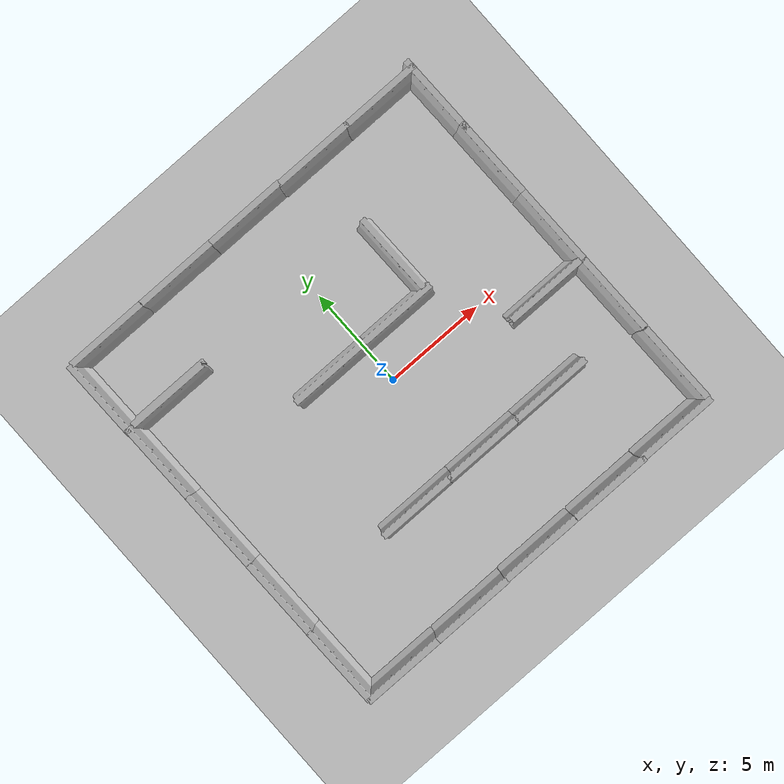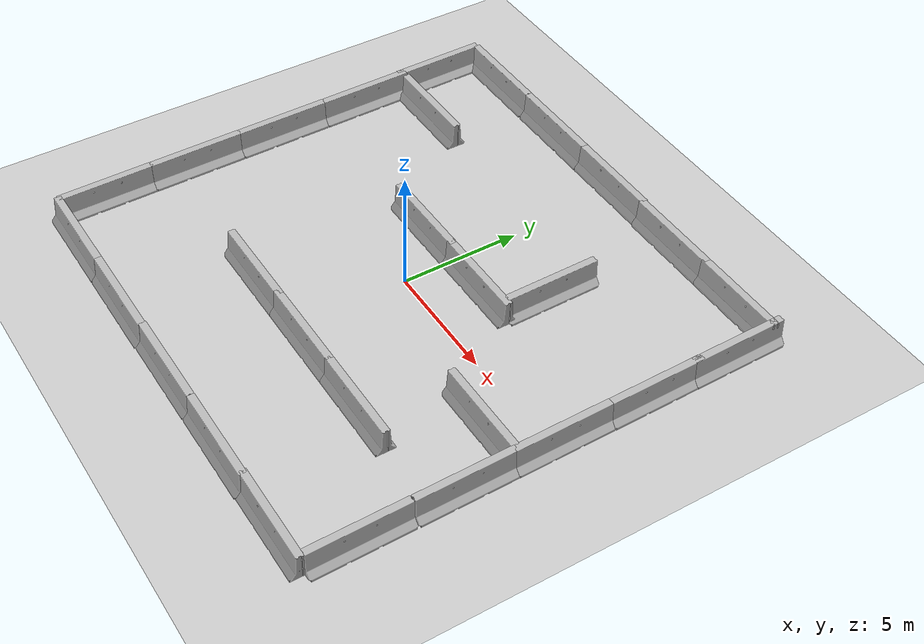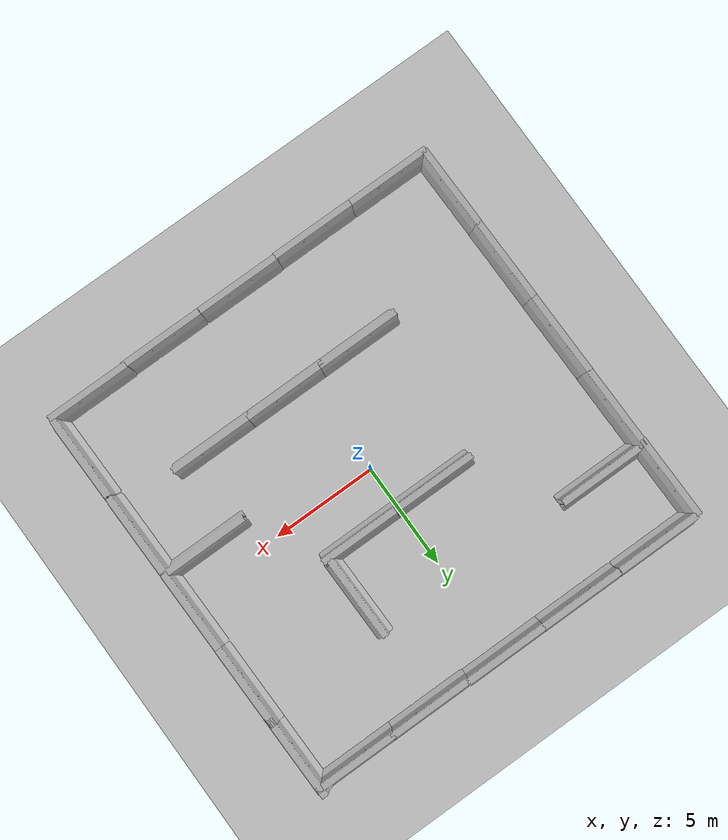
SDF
<sdf version="1.6">
 <world name="default">
  <light name="sun" type="directional">
   <pose>0 0 10 0 -0 0</pose>
   <diffuse>0.8 0.8 0.8 1</diffuse>
   <specular>0.1 0.1 0.1 1</specular>
   <attenuation>
    <range>1000</range>
    <constant>0.9</constant>
    <linear>0.01</linear>
    <quadratic>0.001</quadratic>
   </attenuation>
   <direction>-0.5 0.5 -1</direction>
  </light>
  <model name="ground_plane">
   <static>1</static>
   <link name="link">
    <collision name="collision">
     <geometry><plane><normal>0 0 1</normal><size>100 100</size></plane></geometry>
     <surface><friction><ode><mu>100</mu><mu2>50</mu2></ode></friction></surface>
    </collision>
    <visual name="visual">
     <cast_shadows>0</cast_shadows>
     <geometry><plane><normal>0 0 1</normal><size>100 100</size></plane></geometry>
     <material>
      <script><uri>file://media/materials/scripts/gazebo.material</uri><name>Gazebo/Grey</name></script>
     </material>
    </visual>
   </link>
  </model>
  <gravity>0 0 -9.8</gravity>
  <magnetic_field>6e-06 2.3e-05 -4.2e-05</magnetic_field>
  <atmosphere type="adiabatic"/>
  <physics name="default_physics" default="0" type="ode">
   <max_step_size>0.001</max_step_size>
   <real_time_factor>1</real_time_factor>
   <real_time_update_rate>1000</real_time_update_rate>
  </physics>
  <scene><ambient>0.4 0.4 0.4 1</ambient><background>0.7 0.7 0.7 1</background><shadows>1</shadows></scene>
  <spherical_coordinates>
   <surface_model>EARTH_WGS84</surface_model>
   <latitude_deg>0</latitude_deg>
   <longitude_deg>0</longitude_deg>
   <elevation>0</elevation>
   <heading_deg>0</heading_deg>
  </spherical_coordinates>
  <model name="jersey_barrier_0">
   <static>1</static>
   <link name="link">
    <visual name="visual">
     <geometry>
      <mesh><uri>model://jersey_barrier/meshes/jersey_barrier.dae</uri><scale>1 1 1</scale></mesh>
     </geometry>
    </visual>
    <collision name="upright">
     <pose>0 0 0.5715 0 -0 0</pose>
     <geometry><box><size>4.06542 0.3063 1.143</size></box></geometry>
    </collision>
    <collision name="base">
     <pose>0 0 0.032258 0 -0 0</pose>
     <geometry><box><size>4.06542 0.8107 0.064516</size></box></geometry>
    </collision>
    <collision name="base2">
     <pose>0 0 0.1 0 -0 0</pose>
     <geometry><box><size>4.06542 0.65 0.1</size></box></geometry>
    </collision>
    <collision name="base3">
     <pose>0 0 0.2 0 -0 0</pose>
     <geometry><box><size>4.06542 0.5 0.1</size></box></geometry>
    </collision>
    <collision name="left-angle">
     <pose>0 -0.224 0.2401 0.9 -0 0</pose>
     <geometry><box><size>4.06542 0.5 0.064516</size></box></geometry>
    </collision>
    <collision name="right-angle">
     <pose>0 0.224 0.2401 -0.9 0 0</pose>
     <geometry><box><size>4.06542 0.5 0.064516</size></box></geometry>
    </collision>
   </link>
   <pose>-8.00803 -9.80789 0 0 -0 0</pose>
  </model>
  <model name="jersey_barrier_1">
   <static>1</static>
   <link name="link">
    <visual name="visual">
     <geometry>
      <mesh><uri>model://jersey_barrier/meshes/jersey_barrier.dae</uri><scale>1 1 1</scale></mesh>
     </geometry>
    </visual>
    <collision name="upright">
     <pose>0 0 0.5715 0 -0 0</pose>
     <geometry><box><size>4.06542 0.3063 1.143</size></box></geometry>
    </collision>
    <collision name="base">
     <pose>0 0 0.032258 0 -0 0</pose>
     <geometry><box><size>4.06542 0.8107 0.064516</size></box></geometry>
    </collision>
    <collision name="base2">
     <pose>0 0 0.1 0 -0 0</pose>
     <geometry><box><size>4.06542 0.65 0.1</size></box></geometry>
    </collision>
    <collision name="base3">
     <pose>0 0 0.2 0 -0 0</pose>
     <geometry><box><size>4.06542 0.5 0.1</size></box></geometry>
    </collision>
    <collision name="left-angle">
     <pose>0 -0.224 0.2401 0.9 -0 0</pose>
     <geometry><box><size>4.06542 0.5 0.064516</size></box></geometry>
    </collision>
    <collision name="right-angle">
     <pose>0 0.224 0.2401 -0.9 0 0</pose>
     <geometry><box><size>4.06542 0.5 0.064516</size></box></geometry>
    </collision>
   </link>
   <pose>-4.00181 -9.80833 0 0 -0 0</pose>
  </model>
  <model name="jersey_barrier_0_clone">
   <static>1</static>
   <link name="link">
    <visual name="visual">
     <geometry>
      <mesh><uri>model://jersey_barrier/meshes/jersey_barrier.dae</uri><scale>1 1 1</scale></mesh>
     </geometry>
    </visual>
    <collision name="upright">
     <pose>0 0 0.5715 0 -0 0</pose>
     <geometry><box><size>4.06542 0.3063 1.143</size></box></geometry>
    </collision>
    <collision name="base">
     <pose>0 0 0.032258 0 -0 0</pose>
     <geometry><box><size>4.06542 0.8107 0.064516</size></box></geometry>
    </collision>
    <collision name="base2">
     <pose>0 0 0.1 0 -0 0</pose>
     <geometry><box><size>4.06542 0.65 0.1</size></box></geometry>
    </collision>
    <collision name="base3">
     <pose>0 0 0.2 0 -0 0</pose>
     <geometry><box><size>4.06542 0.5 0.1</size></box></geometry>
    </collision>
    <collision name="left-angle">
     <pose>0 -0.224 0.2401 0.9 -0 0</pose>
     <geometry><box><size>4.06542 0.5 0.064516</size></box></geometry>
    </collision>
    <collision name="right-angle">
     <pose>0 0.224 0.2401 -0.9 0 0</pose>
     <geometry><box><size>4.06542 0.5 0.064516</size></box></geometry>
    </collision>
   </link>
   <pose>-0.02046 -9.7729 0 0 -0 0</pose>
  </model>
  <model name="jersey_barrier_0_clone_0">
   <static>1</static>
   <link name="link">
    <visual name="visual">
     <geometry>
      <mesh><uri>model://jersey_barrier/meshes/jersey_barrier.dae</uri><scale>1 1 1</scale></mesh>
     </geometry>
    </visual>
    <collision name="upright">
     <pose>0 0 0.5715 0 -0 0</pose>
     <geometry><box><size>4.06542 0.3063 1.143</size></box></geometry>
    </collision>
    <collision name="base">
     <pose>0 0 0.032258 0 -0 0</pose>
     <geometry><box><size>4.06542 0.8107 0.064516</size></box></geometry>
    </collision>
    <collision name="base2">
     <pose>0 0 0.1 0 -0 0</pose>
     <geometry><box><size>4.06542 0.65 0.1</size></box></geometry>
    </collision>
    <collision name="base3">
     <pose>0 0 0.2 0 -0 0</pose>
     <geometry><box><size>4.06542 0.5 0.1</size></box></geometry>
    </collision>
    <collision name="left-angle">
     <pose>0 -0.224 0.2401 0.9 -0 0</pose>
     <geometry><box><size>4.06542 0.5 0.064516</size></box></geometry>
    </collision>
    <collision name="right-angle">
     <pose>0 0.224 0.2401 -0.9 0 0</pose>
     <geometry><box><size>4.06542 0.5 0.064516</size></box></geometry>
    </collision>
   </link>
   <pose>4.0183 -9.76947 0 0 -0 0</pose>
  </model>
  <model name="jersey_barrier_0_clone_1">
   <static>1</static>
   <link name="link">
    <visual name="visual">
     <geometry>
      <mesh><uri>model://jersey_barrier/meshes/jersey_barrier.dae</uri><scale>1 1 1</scale></mesh>
     </geometry>
    </visual>
    <collision name="upright">
     <pose>0 0 0.5715 0 -0 0</pose>
     <geometry><box><size>4.06542 0.3063 1.143</size></box></geometry>
    </collision>
    <collision name="base">
     <pose>0 0 0.032258 0 -0 0</pose>
     <geometry><box><size>4.06542 0.8107 0.064516</size></box></geometry>
    </collision>
    <collision name="base2">
     <pose>0 0 0.1 0 -0 0</pose>
     <geometry><box><size>4.06542 0.65 0.1</size></box></geometry>
    </collision>
    <collision name="base3">
     <pose>0 0 0.2 0 -0 0</pose>
     <geometry><box><size>4.06542 0.5 0.1</size></box></geometry>
    </collision>
    <collision name="left-angle">
     <pose>0 -0.224 0.2401 0.9 -0 0</pose>
     <geometry><box><size>4.06542 0.5 0.064516</size></box></geometry>
    </collision>
    <collision name="right-angle">
     <pose>0 0.224 0.2401 -0.9 0 0</pose>
     <geometry><box><size>4.06542 0.5 0.064516</size></box></geometry>
    </collision>
   </link>
   <pose>7.86671 -9.73049 0 0 -0 0</pose>
  </model>
  <model name="jersey_barrier_0_clone_2">
   <static>1</static>
   <link name="link">
    <visual name="visual">
     <geometry>
      <mesh><uri>model://jersey_barrier/meshes/jersey_barrier.dae</uri><scale>1 1 1</scale></mesh>
     </geometry>
    </visual>
    <collision name="upright">
     <pose>0 0 0.5715 0 -0 0</pose>
     <geometry><box><size>4.06542 0.3063 1.143</size></box></geometry>
    </collision>
    <collision name="base">
     <pose>0 0 0.032258 0 -0 0</pose>
     <geometry><box><size>4.06542 0.8107 0.064516</size></box></geometry>
    </collision>
    <collision name="base2">
     <pose>0 0 0.1 0 -0 0</pose>
     <geometry><box><size>4.06542 0.65 0.1</size></box></geometry>
    </collision>
    <collision name="base3">
     <pose>0 0 0.2 0 -0 0</pose>
     <geometry><box><size>4.06542 0.5 0.1</size></box></geometry>
    </collision>
    <collision name="left-angle">
     <pose>0 -0.224 0.2401 0.9 -0 0</pose>
     <geometry><box><size>4.06542 0.5 0.064516</size></box></geometry>
    </collision>
    <collision name="right-angle">
     <pose>0 0.224 0.2401 -0.9 0 0</pose>
     <geometry><box><size>4.06542 0.5 0.064516</size></box></geometry>
    </collision>
   </link>
   <pose>9.75338 -7.57624 0 0 0 -1.55932</pose>
  </model>
  <model name="jersey_barrier_0_clone_3">
   <static>1</static>
   <link name="link">
    <visual name="visual">
     <geometry>
      <mesh><uri>model://jersey_barrier/meshes/jersey_barrier.dae</uri><scale>1 1 1</scale></mesh>
     </geometry>
    </visual>
    <collision name="upright">
     <pose>0 0 0.5715 0 -0 0</pose>
     <geometry><box><size>4.06542 0.3063 1.143</size></box></geometry>
    </collision>
    <collision name="base">
     <pose>0 0 0.032258 0 -0 0</pose>
     <geometry><box><size>4.06542 0.8107 0.064516</size></box></geometry>
    </collision>
    <collision name="base2">
     <pose>0 0 0.1 0 -0 0</pose>
     <geometry><box><size>4.06542 0.65 0.1</size></box></geometry>
    </collision>
    <collision name="base3">
     <pose>0 0 0.2 0 -0 0</pose>
     <geometry><box><size>4.06542 0.5 0.1</size></box></geometry>
    </collision>
    <collision name="left-angle">
     <pose>0 -0.224 0.2401 0.9 -0 0</pose>
     <geometry><box><size>4.06542 0.5 0.064516</size></box></geometry>
    </collision>
    <collision name="right-angle">
     <pose>0 0.224 0.2401 -0.9 0 0</pose>
     <geometry><box><size>4.06542 0.5 0.064516</size></box></geometry>
    </collision>
   </link>
   <pose>-8.06687 9.72122 0 0 -0 0</pose>
  </model>
  <model name="jersey_barrier_0_clone_4">
   <static>1</static>
   <link name="link">
    <visual name="visual">
     <geometry>
      <mesh><uri>model://jersey_barrier/meshes/jersey_barrier.dae</uri><scale>1 1 1</scale></mesh>
     </geometry>
    </visual>
    <collision name="upright">
     <pose>0 0 0.5715 0 -0 0</pose>
     <geometry><box><size>4.06542 0.3063 1.143</size></box></geometry>
    </collision>
    <collision name="base">
     <pose>0 0 0.032258 0 -0 0</pose>
     <geometry><box><size>4.06542 0.8107 0.064516</size></box></geometry>
    </collision>
    <collision name="base2">
     <pose>0 0 0.1 0 -0 0</pose>
     <geometry><box><size>4.06542 0.65 0.1</size></box></geometry>
    </collision>
    <collision name="base3">
     <pose>0 0 0.2 0 -0 0</pose>
     <geometry><box><size>4.06542 0.5 0.1</size></box></geometry>
    </collision>
    <collision name="left-angle">
     <pose>0 -0.224 0.2401 0.9 -0 0</pose>
     <geometry><box><size>4.06542 0.5 0.064516</size></box></geometry>
    </collision>
    <collision name="right-angle">
     <pose>0 0.224 0.2401 -0.9 0 0</pose>
     <geometry><box><size>4.06542 0.5 0.064516</size></box></geometry>
    </collision>
   </link>
   <pose>-4.0208 9.71782 0 0 -0 0</pose>
  </model>
  <model name="jersey_barrier_0_clone_5">
   <static>1</static>
   <link name="link">
    <visual name="visual">
     <geometry>
      <mesh><uri>model://jersey_barrier/meshes/jersey_barrier.dae</uri><scale>1 1 1</scale></mesh>
     </geometry>
    </visual>
    <collision name="upright">
     <pose>0 0 0.5715 0 -0 0</pose>
     <geometry><box><size>4.06542 0.3063 1.143</size></box></geometry>
    </collision>
    <collision name="base">
     <pose>0 0 0.032258 0 -0 0</pose>
     <geometry><box><size>4.06542 0.8107 0.064516</size></box></geometry>
    </collision>
    <collision name="base2">
     <pose>0 0 0.1 0 -0 0</pose>
     <geometry><box><size>4.06542 0.65 0.1</size></box></geometry>
    </collision>
    <collision name="base3">
     <pose>0 0 0.2 0 -0 0</pose>
     <geometry><box><size>4.06542 0.5 0.1</size></box></geometry>
    </collision>
    <collision name="left-angle">
     <pose>0 -0.224 0.2401 0.9 -0 0</pose>
     <geometry><box><size>4.06542 0.5 0.064516</size></box></geometry>
    </collision>
    <collision name="right-angle">
     <pose>0 0.224 0.2401 -0.9 0 0</pose>
     <geometry><box><size>4.06542 0.5 0.064516</size></box></geometry>
    </collision>
   </link>
   <pose>-0.053333 9.71451 0 0 -0 0</pose>
  </model>
  <model name="jersey_barrier_0_clone_6">
   <static>1</static>
   <link name="link">
    <visual name="visual">
     <geometry>
      <mesh><uri>model://jersey_barrier/meshes/jersey_barrier.dae</uri><scale>1 1 1</scale></mesh>
     </geometry>
    </visual>
    <collision name="upright">
     <pose>0 0 0.5715 0 -0 0</pose>
     <geometry><box><size>4.06542 0.3063 1.143</size></box></geometry>
    </collision>
    <collision name="base">
     <pose>0 0 0.032258 0 -0 0</pose>
     <geometry><box><size>4.06542 0.8107 0.064516</size></box></geometry>
    </collision>
    <collision name="base2">
     <pose>0 0 0.1 0 -0 0</pose>
     <geometry><box><size>4.06542 0.65 0.1</size></box></geometry>
    </collision>
    <collision name="base3">
     <pose>0 0 0.2 0 -0 0</pose>
     <geometry><box><size>4.06542 0.5 0.1</size></box></geometry>
    </collision>
    <collision name="left-angle">
     <pose>0 -0.224 0.2401 0.9 -0 0</pose>
     <geometry><box><size>4.06542 0.5 0.064516</size></box></geometry>
    </collision>
    <collision name="right-angle">
     <pose>0 0.224 0.2401 -0.9 0 0</pose>
     <geometry><box><size>4.06542 0.5 0.064516</size></box></geometry>
    </collision>
   </link>
   <pose>3.87428 9.67304 0 0 -0 0</pose>
  </model>
  <model name="jersey_barrier_0_clone_7">
   <static>1</static>
   <link name="link">
    <visual name="visual">
     <geometry>
      <mesh><uri>model://jersey_barrier/meshes/jersey_barrier.dae</uri><scale>1 1 1</scale></mesh>
     </geometry>
    </visual>
    <collision name="upright">
     <pose>0 0 0.5715 0 -0 0</pose>
     <geometry><box><size>4.06542 0.3063 1.143</size></box></geometry>
    </collision>
    <collision name="base">
     <pose>0 0 0.032258 0 -0 0</pose>
     <geometry><box><size>4.06542 0.8107 0.064516</size></box></geometry>
    </collision>
    <collision name="base2">
     <pose>0 0 0.1 0 -0 0</pose>
     <geometry><box><size>4.06542 0.65 0.1</size></box></geometry>
    </collision>
    <collision name="base3">
     <pose>0 0 0.2 0 -0 0</pose>
     <geometry><box><size>4.06542 0.5 0.1</size></box></geometry>
    </collision>
    <collision name="left-angle">
     <pose>0 -0.224 0.2401 0.9 -0 0</pose>
     <geometry><box><size>4.06542 0.5 0.064516</size></box></geometry>
    </collision>
    <collision name="right-angle">
     <pose>0 0.224 0.2401 -0.9 0 0</pose>
     <geometry><box><size>4.06542 0.5 0.064516</size></box></geometry>
    </collision>
   </link>
   <pose>7.72339 9.66981 0 0 -0 0</pose>
  </model>
  <model name="jersey_barrier_0_clone_2_clone">
   <static>1</static>
   <link name="link">
    <visual name="visual">
     <geometry>
      <mesh><uri>model://jersey_barrier/meshes/jersey_barrier.dae</uri><scale>1 1 1</scale></mesh>
     </geometry>
    </visual>
    <collision name="upright">
     <pose>0 0 0.5715 0 -0 0</pose>
     <geometry><box><size>4.06542 0.3063 1.143</size></box></geometry>
    </collision>
    <collision name="base">
     <pose>0 0 0.032258 0 -0 0</pose>
     <geometry><box><size>4.06542 0.8107 0.064516</size></box></geometry>
    </collision>
    <collision name="base2">
     <pose>0 0 0.1 0 -0 0</pose>
     <geometry><box><size>4.06542 0.65 0.1</size></box></geometry>
    </collision>
    <collision name="base3">
     <pose>0 0 0.2 0 -0 0</pose>
     <geometry><box><size>4.06542 0.5 0.1</size></box></geometry>
    </collision>
    <collision name="left-angle">
     <pose>0 -0.224 0.2401 0.9 -0 0</pose>
     <geometry><box><size>4.06542 0.5 0.064516</size></box></geometry>
    </collision>
    <collision name="right-angle">
     <pose>0 0.224 0.2401 -0.9 0 0</pose>
     <geometry><box><size>4.06542 0.5 0.064516</size></box></geometry>
    </collision>
   </link>
   <pose>9.71721 -3.4961 0 0 0 -1.55932</pose>
  </model>
  <model name="jersey_barrier_0_clone_2_clone_0">
   <static>1</static>
   <link name="link">
    <visual name="visual">
     <geometry>
      <mesh><uri>model://jersey_barrier/meshes/jersey_barrier.dae</uri><scale>1 1 1</scale></mesh>
     </geometry>
    </visual>
    <collision name="upright">
     <pose>0 0 0.5715 0 -0 0</pose>
     <geometry><box><size>4.06542 0.3063 1.143</size></box></geometry>
    </collision>
    <collision name="base">
     <pose>0 0 0.032258 0 -0 0</pose>
     <geometry><box><size>4.06542 0.8107 0.064516</size></box></geometry>
    </collision>
    <collision name="base2">
     <pose>0 0 0.1 0 -0 0</pose>
     <geometry><box><size>4.06542 0.65 0.1</size></box></geometry>
    </collision>
    <collision name="base3">
     <pose>0 0 0.2 0 -0 0</pose>
     <geometry><box><size>4.06542 0.5 0.1</size></box></geometry>
    </collision>
    <collision name="left-angle">
     <pose>0 -0.224 0.2401 0.9 -0 0</pose>
     <geometry><box><size>4.06542 0.5 0.064516</size></box></geometry>
    </collision>
    <collision name="right-angle">
     <pose>0 0.224 0.2401 -0.9 0 0</pose>
     <geometry><box><size>4.06542 0.5 0.064516</size></box></geometry>
    </collision>
   </link>
   <pose>9.68061 0.429867 0 0 0 -1.55932</pose>
  </model>
  <model name="jersey_barrier_0_clone_2_clone_1">
   <static>1</static>
   <link name="link">
    <visual name="visual">
     <geometry>
      <mesh><uri>model://jersey_barrier/meshes/jersey_barrier.dae</uri><scale>1 1 1</scale></mesh>
     </geometry>
    </visual>
    <collision name="upright">
     <pose>0 0 0.5715 0 -0 0</pose>
     <geometry><box><size>4.06542 0.3063 1.143</size></box></geometry>
    </collision>
    <collision name="base">
     <pose>0 0 0.032258 0 -0 0</pose>
     <geometry><box><size>4.06542 0.8107 0.064516</size></box></geometry>
    </collision>
    <collision name="base2">
     <pose>0 0 0.1 0 -0 0</pose>
     <geometry><box><size>4.06542 0.65 0.1</size></box></geometry>
    </collision>
    <collision name="base3">
     <pose>0 0 0.2 0 -0 0</pose>
     <geometry><box><size>4.06542 0.5 0.1</size></box></geometry>
    </collision>
    <collision name="left-angle">
     <pose>0 -0.224 0.2401 0.9 -0 0</pose>
     <geometry><box><size>4.06542 0.5 0.064516</size></box></geometry>
    </collision>
    <collision name="right-angle">
     <pose>0 0.224 0.2401 -0.9 0 0</pose>
     <geometry><box><size>4.06542 0.5 0.064516</size></box></geometry>
    </collision>
   </link>
   <pose>9.64472 4.43307 0 0 0 -1.55932</pose>
  </model>
  <model name="jersey_barrier_0_clone_2_clone_2">
   <static>1</static>
   <link name="link">
    <visual name="visual">
     <geometry>
      <mesh><uri>model://jersey_barrier/meshes/jersey_barrier.dae</uri><scale>1 1 1</scale></mesh>
     </geometry>
    </visual>
    <collision name="upright">
     <pose>0 0 0.5715 0 -0 0</pose>
     <geometry><box><size>4.06542 0.3063 1.143</size></box></geometry>
    </collision>
    <collision name="base">
     <pose>0 0 0.032258 0 -0 0</pose>
     <geometry><box><size>4.06542 0.8107 0.064516</size></box></geometry>
    </collision>
    <collision name="base2">
     <pose>0 0 0.1 0 -0 0</pose>
     <geometry><box><size>4.06542 0.65 0.1</size></box></geometry>
    </collision>
    <collision name="base3">
     <pose>0 0 0.2 0 -0 0</pose>
     <geometry><box><size>4.06542 0.5 0.1</size></box></geometry>
    </collision>
    <collision name="left-angle">
     <pose>0 -0.224 0.2401 0.9 -0 0</pose>
     <geometry><box><size>4.06542 0.5 0.064516</size></box></geometry>
    </collision>
    <collision name="right-angle">
     <pose>0 0.224 0.2401 -0.9 0 0</pose>
     <geometry><box><size>4.06542 0.5 0.064516</size></box></geometry>
    </collision>
   </link>
   <pose>9.60766 8.05125 0 0 0 -1.55932</pose>
  </model>
  <model name="jersey_barrier_0_clone_2_clone_2_clone">
   <static>1</static>
   <link name="link">
    <visual name="visual">
     <geometry>
      <mesh><uri>model://jersey_barrier/meshes/jersey_barrier.dae</uri><scale>1 1 1</scale></mesh>
     </geometry>
    </visual>
    <collision name="upright">
     <pose>0 0 0.5715 0 -0 0</pose>
     <geometry><box><size>4.06542 0.3063 1.143</size></box></geometry>
    </collision>
    <collision name="base">
     <pose>0 0 0.032258 0 -0 0</pose>
     <geometry><box><size>4.06542 0.8107 0.064516</size></box></geometry>
    </collision>
    <collision name="base2">
     <pose>0 0 0.1 0 -0 0</pose>
     <geometry><box><size>4.06542 0.65 0.1</size></box></geometry>
    </collision>
    <collision name="base3">
     <pose>0 0 0.2 0 -0 0</pose>
     <geometry><box><size>4.06542 0.5 0.1</size></box></geometry>
    </collision>
    <collision name="left-angle">
     <pose>0 -0.224 0.2401 0.9 -0 0</pose>
     <geometry><box><size>4.06542 0.5 0.064516</size></box></geometry>
    </collision>
    <collision name="right-angle">
     <pose>0 0.224 0.2401 -0.9 0 0</pose>
     <geometry><box><size>4.06542 0.5 0.064516</size></box></geometry>
    </collision>
   </link>
   <pose>-9.96184 -7.80551 0 0 0 -1.55932</pose>
  </model>
  <model name="jersey_barrier_0_clone_2_clone_2_clone_0">
   <static>1</static>
   <link name="link">
    <visual name="visual">
     <geometry>
      <mesh><uri>model://jersey_barrier/meshes/jersey_barrier.dae</uri><scale>1 1 1</scale></mesh>
     </geometry>
    </visual>
    <collision name="upright">
     <pose>0 0 0.5715 0 -0 0</pose>
     <geometry><box><size>4.06542 0.3063 1.143</size></box></geometry>
    </collision>
    <collision name="base">
     <pose>0 0 0.032258 0 -0 0</pose>
     <geometry><box><size>4.06542 0.8107 0.064516</size></box></geometry>
    </collision>
    <collision name="base2">
     <pose>0 0 0.1 0 -0 0</pose>
     <geometry><box><size>4.06542 0.65 0.1</size></box></geometry>
    </collision>
    <collision name="base3">
     <pose>0 0 0.2 0 -0 0</pose>
     <geometry><box><size>4.06542 0.5 0.1</size></box></geometry>
    </collision>
    <collision name="left-angle">
     <pose>0 -0.224 0.2401 0.9 -0 0</pose>
     <geometry><box><size>4.06542 0.5 0.064516</size></box></geometry>
    </collision>
    <collision name="right-angle">
     <pose>0 0.224 0.2401 -0.9 0 0</pose>
     <geometry><box><size>4.06542 0.5 0.064516</size></box></geometry>
    </collision>
   </link>
   <pose>-9.99889 -3.87663 0 0 0 -1.55932</pose>
  </model>
  <model name="jersey_barrier_0_clone_2_clone_2_clone_1">
   <static>1</static>
   <link name="link">
    <visual name="visual">
     <geometry>
      <mesh><uri>model://jersey_barrier/meshes/jersey_barrier.dae</uri><scale>1 1 1</scale></mesh>
     </geometry>
    </visual>
    <collision name="upright">
     <pose>0 0 0.5715 0 -0 0</pose>
     <geometry><box><size>4.06542 0.3063 1.143</size></box></geometry>
    </collision>
    <collision name="base">
     <pose>0 0 0.032258 0 -0 0</pose>
     <geometry><box><size>4.06542 0.8107 0.064516</size></box></geometry>
    </collision>
    <collision name="base2">
     <pose>0 0 0.1 0 -0 0</pose>
     <geometry><box><size>4.06542 0.65 0.1</size></box></geometry>
    </collision>
    <collision name="base3">
     <pose>0 0 0.2 0 -0 0</pose>
     <geometry><box><size>4.06542 0.5 0.1</size></box></geometry>
    </collision>
    <collision name="left-angle">
     <pose>0 -0.224 0.2401 0.9 -0 0</pose>
     <geometry><box><size>4.06542 0.5 0.064516</size></box></geometry>
    </collision>
    <collision name="right-angle">
     <pose>0 0.224 0.2401 -0.9 0 0</pose>
     <geometry><box><size>4.06542 0.5 0.064516</size></box></geometry>
    </collision>
   </link>
   <pose>-10.0363 0.090914 0 0 0 -1.55932</pose>
  </model>
  <model name="jersey_barrier_0_clone_2_clone_2_clone_2">
   <static>1</static>
   <link name="link">
    <visual name="visual">
     <geometry>
      <mesh><uri>model://jersey_barrier/meshes/jersey_barrier.dae</uri><scale>1 1 1</scale></mesh>
     </geometry>
    </visual>
    <collision name="upright">
     <pose>0 0 0.5715 0 -0 0</pose>
     <geometry><box><size>4.06542 0.3063 1.143</size></box></geometry>
    </collision>
    <collision name="base">
     <pose>0 0 0.032258 0 -0 0</pose>
     <geometry><box><size>4.06542 0.8107 0.064516</size></box></geometry>
    </collision>
    <collision name="base2">
     <pose>0 0 0.1 0 -0 0</pose>
     <geometry><box><size>4.06542 0.65 0.1</size></box></geometry>
    </collision>
    <collision name="base3">
     <pose>0 0 0.2 0 -0 0</pose>
     <geometry><box><size>4.06542 0.5 0.1</size></box></geometry>
    </collision>
    <collision name="left-angle">
     <pose>0 -0.224 0.2401 0.9 -0 0</pose>
     <geometry><box><size>4.06542 0.5 0.064516</size></box></geometry>
    </collision>
    <collision name="right-angle">
     <pose>0 0.224 0.2401 -0.9 0 0</pose>
     <geometry><box><size>4.06542 0.5 0.064516</size></box></geometry>
    </collision>
   </link>
   <pose>-10.0729 4.05901 0 0 0 -1.55932</pose>
  </model>
  <model name="jersey_barrier_0_clone_2_clone_2_clone_3">
   <static>1</static>
   <link name="link">
    <visual name="visual">
     <geometry>
      <mesh><uri>model://jersey_barrier/meshes/jersey_barrier.dae</uri><scale>1 1 1</scale></mesh>
     </geometry>
    </visual>
    <collision name="upright">
     <pose>0 0 0.5715 0 -0 0</pose>
     <geometry><box><size>4.06542 0.3063 1.143</size></box></geometry>
    </collision>
    <collision name="base">
     <pose>0 0 0.032258 0 -0 0</pose>
     <geometry><box><size>4.06542 0.8107 0.064516</size></box></geometry>
    </collision>
    <collision name="base2">
     <pose>0 0 0.1 0 -0 0</pose>
     <geometry><box><size>4.06542 0.65 0.1</size></box></geometry>
    </collision>
    <collision name="base3">
     <pose>0 0 0.2 0 -0 0</pose>
     <geometry><box><size>4.06542 0.5 0.1</size></box></geometry>
    </collision>
    <collision name="left-angle">
     <pose>0 -0.224 0.2401 0.9 -0 0</pose>
     <geometry><box><size>4.06542 0.5 0.064516</size></box></geometry>
    </collision>
    <collision name="right-angle">
     <pose>0 0.224 0.2401 -0.9 0 0</pose>
     <geometry><box><size>4.06542 0.5 0.064516</size></box></geometry>
    </collision>
   </link>
   <pose>-10.1486 7.75764 0 0 0 -1.55932</pose>
  </model>
  <model name="jersey_barrier_0_clone_2_clone_2_clone_4">
   <static>1</static>
   <link name="link">
    <visual name="visual">
     <geometry>
      <mesh><uri>model://jersey_barrier/meshes/jersey_barrier.dae</uri><scale>1 1 1</scale></mesh>
     </geometry>
    </visual>
    <collision name="upright">
     <pose>0 0 0.5715 0 -0 0</pose>
     <geometry><box><size>4.06542 0.3063 1.143</size></box></geometry>
    </collision>
    <collision name="base">
     <pose>0 0 0.032258 0 -0 0</pose>
     <geometry><box><size>4.06542 0.8107 0.064516</size></box></geometry>
    </collision>
    <collision name="base2">
     <pose>0 0 0.1 0 -0 0</pose>
     <geometry><box><size>4.06542 0.65 0.1</size></box></geometry>
    </collision>
    <collision name="base3">
     <pose>0 0 0.2 0 -0 0</pose>
     <geometry><box><size>4.06542 0.5 0.1</size></box></geometry>
    </collision>
    <collision name="left-angle">
     <pose>0 -0.224 0.2401 0.9 -0 0</pose>
     <geometry><box><size>4.06542 0.5 0.064516</size></box></geometry>
    </collision>
    <collision name="right-angle">
     <pose>0 0.224 0.2401 -0.9 0 0</pose>
     <geometry><box><size>4.06542 0.5 0.064516</size></box></geometry>
    </collision>
   </link>
   <pose>3.64034 4.12831 0 0 0 -1.55932</pose>
  </model>
  <model name="jersey_barrier_0_clone_0_clone">
   <static>1</static>
   <link name="link">
    <visual name="visual">
     <geometry>
      <mesh><uri>model://jersey_barrier/meshes/jersey_barrier.dae</uri><scale>1 1 1</scale></mesh>
     </geometry>
    </visual>
    <collision name="upright">
     <pose>0 0 0.5715 0 -0 0</pose>
     <geometry><box><size>4.06542 0.3063 1.143</size></box></geometry>
    </collision>
    <collision name="base">
     <pose>0 0 0.032258 0 -0 0</pose>
     <geometry><box><size>4.06542 0.8107 0.064516</size></box></geometry>
    </collision>
    <collision name="base2">
     <pose>0 0 0.1 0 -0 0</pose>
     <geometry><box><size>4.06542 0.65 0.1</size></box></geometry>
    </collision>
    <collision name="base3">
     <pose>0 0 0.2 0 -0 0</pose>
     <geometry><box><size>4.06542 0.5 0.1</size></box></geometry>
    </collision>
    <collision name="left-angle">
     <pose>0 -0.224 0.2401 0.9 -0 0</pose>
     <geometry><box><size>4.06542 0.5 0.064516</size></box></geometry>
    </collision>
    <collision name="right-angle">
     <pose>0 0.224 0.2401 -0.9 0 0</pose>
     <geometry><box><size>4.06542 0.5 0.064516</size></box></geometry>
    </collision>
   </link>
   <pose>1.94535 2.05017 0 0 -0 0</pose>
  </model>
  <model name="jersey_barrier_0_clone_0_clone_0">
   <static>1</static>
   <link name="link">
    <visual name="visual">
     <geometry>
      <mesh><uri>model://jersey_barrier/meshes/jersey_barrier.dae</uri><scale>1 1 1</scale></mesh>
     </geometry>
    </visual>
    <collision name="upright">
     <pose>0 0 0.5715 0 -0 0</pose>
     <geometry><box><size>4.06542 0.3063 1.143</size></box></geometry>
    </collision>
    <collision name="base">
     <pose>0 0 0.032258 0 -0 0</pose>
     <geometry><box><size>4.06542 0.8107 0.064516</size></box></geometry>
    </collision>
    <collision name="base2">
     <pose>0 0 0.1 0 -0 0</pose>
     <geometry><box><size>4.06542 0.65 0.1</size></box></geometry>
    </collision>
    <collision name="base3">
     <pose>0 0 0.2 0 -0 0</pose>
     <geometry><box><size>4.06542 0.5 0.1</size></box></geometry>
    </collision>
    <collision name="left-angle">
     <pose>0 -0.224 0.2401 0.9 -0 0</pose>
     <geometry><box><size>4.06542 0.5 0.064516</size></box></geometry>
    </collision>
    <collision name="right-angle">
     <pose>0 0.224 0.2401 -0.9 0 0</pose>
     <geometry><box><size>4.06542 0.5 0.064516</size></box></geometry>
    </collision>
   </link>
   <pose>-1.8285 2.05179 0 0 -0 0</pose>
  </model>
  <model name="jersey_barrier_0_clone_0_clone_1">
   <static>1</static>
   <link name="link">
    <visual name="visual">
     <geometry>
      <mesh><uri>model://jersey_barrier/meshes/jersey_barrier.dae</uri><scale>1 1 1</scale></mesh>
     </geometry>
    </visual>
    <collision name="upright">
     <pose>0 0 0.5715 0 -0 0</pose>
     <geometry><box><size>4.06542 0.3063 1.143</size></box></geometry>
    </collision>
    <collision name="base">
     <pose>0 0 0.032258 0 -0 0</pose>
     <geometry><box><size>4.06542 0.8107 0.064516</size></box></geometry>
    </collision>
    <collision name="base2">
     <pose>0 0 0.1 0 -0 0</pose>
     <geometry><box><size>4.06542 0.65 0.1</size></box></geometry>
    </collision>
    <collision name="base3">
     <pose>0 0 0.2 0 -0 0</pose>
     <geometry><box><size>4.06542 0.5 0.1</size></box></geometry>
    </collision>
    <collision name="left-angle">
     <pose>0 -0.224 0.2401 0.9 -0 0</pose>
     <geometry><box><size>4.06542 0.5 0.064516</size></box></geometry>
    </collision>
    <collision name="right-angle">
     <pose>0 0.224 0.2401 -0.9 0 0</pose>
     <geometry><box><size>4.06542 0.5 0.064516</size></box></geometry>
    </collision>
   </link>
   <pose>4.86761 -4.84224 0 0 -0 0</pose>
  </model>
  <model name="jersey_barrier_0_clone_0_clone_2">
   <static>1</static>
   <link name="link">
    <visual name="visual">
     <geometry>
      <mesh><uri>model://jersey_barrier/meshes/jersey_barrier.dae</uri><scale>1 1 1</scale></mesh>
     </geometry>
    </visual>
    <collision name="upright">
     <pose>0 0 0.5715 0 -0 0</pose>
     <geometry><box><size>4.06542 0.3063 1.143</size></box></geometry>
    </collision>
    <collision name="base">
     <pose>0 0 0.032258 0 -0 0</pose>
     <geometry><box><size>4.06542 0.8107 0.064516</size></box></geometry>
    </collision>
    <collision name="base2">
     <pose>0 0 0.1 0 -0 0</pose>
     <geometry><box><size>4.06542 0.65 0.1</size></box></geometry>
    </collision>
    <collision name="base3">
     <pose>0 0 0.2 0 -0 0</pose>
     <geometry><box><size>4.06542 0.5 0.1</size></box></geometry>
    </collision>
    <collision name="left-angle">
     <pose>0 -0.224 0.2401 0.9 -0 0</pose>
     <geometry><box><size>4.06542 0.5 0.064516</size></box></geometry>
    </collision>
    <collision name="right-angle">
     <pose>0 0.224 0.2401 -0.9 0 0</pose>
     <geometry><box><size>4.06542 0.5 0.064516</size></box></geometry>
    </collision>
   </link>
   <pose>0.979435 -4.84178 0 0 -0 0</pose>
  </model>
  <model name="jersey_barrier_0_clone_0_clone_3">
   <static>1</static>
   <link name="link">
    <visual name="visual">
     <geometry>
      <mesh><uri>model://jersey_barrier/meshes/jersey_barrier.dae</uri><scale>1 1 1</scale></mesh>
     </geometry>
    </visual>
    <collision name="upright">
     <pose>0 0 0.5715 0 -0 0</pose>
     <geometry><box><size>4.06542 0.3063 1.143</size></box></geometry>
    </collision>
    <collision name="base">
     <pose>0 0 0.032258 0 -0 0</pose>
     <geometry><box><size>4.06542 0.8107 0.064516</size></box></geometry>
    </collision>
    <collision name="base2">
     <pose>0 0 0.1 0 -0 0</pose>
     <geometry><box><size>4.06542 0.65 0.1</size></box></geometry>
    </collision>
    <collision name="base3">
     <pose>0 0 0.2 0 -0 0</pose>
     <geometry><box><size>4.06542 0.5 0.1</size></box></geometry>
    </collision>
    <collision name="left-angle">
     <pose>0 -0.224 0.2401 0.9 -0 0</pose>
     <geometry><box><size>4.06542 0.5 0.064516</size></box></geometry>
    </collision>
    <collision name="right-angle">
     <pose>0 0.224 0.2401 -0.9 0 0</pose>
     <geometry><box><size>4.06542 0.5 0.064516</size></box></geometry>
    </collision>
   </link>
   <pose>-2.79459 -4.84097 0 0 -0 0</pose>
  </model>
  <model name="jersey_barrier_0_clone_0_clone_4">
   <static>1</static>
   <link name="link">
    <visual name="visual">
     <geometry>
      <mesh><uri>model://jersey_barrier/meshes/jersey_barrier.dae</uri><scale>1 1 1</scale></mesh>
     </geometry>
    </visual>
    <collision name="upright">
     <pose>0 0 0.5715 0 -0 0</pose>
     <geometry><box><size>4.06542 0.3063 1.143</size></box></geometry>
    </collision>
    <collision name="base">
     <pose>0 0 0.032258 0 -0 0</pose>
     <geometry><box><size>4.06542 0.8107 0.064516</size></box></geometry>
    </collision>
    <collision name="base2">
     <pose>0 0 0.1 0 -0 0</pose>
     <geometry><box><size>4.06542 0.65 0.1</size></box></geometry>
    </collision>
    <collision name="base3">
     <pose>0 0 0.2 0 -0 0</pose>
     <geometry><box><size>4.06542 0.5 0.1</size></box></geometry>
    </collision>
    <collision name="left-angle">
     <pose>0 -0.224 0.2401 0.9 -0 0</pose>
     <geometry><box><size>4.06542 0.5 0.064516</size></box></geometry>
    </collision>
    <collision name="right-angle">
     <pose>0 0.224 0.2401 -0.9 0 0</pose>
     <geometry><box><size>4.06542 0.5 0.064516</size></box></geometry>
    </collision>
   </link>
   <pose>-7.79837 5.98383 0 0 -0 0</pose>
  </model>
  <model name="jersey_barrier_0_clone_0_clone_5">
   <static>1</static>
   <link name="link">
    <visual name="visual">
     <geometry>
      <mesh><uri>model://jersey_barrier/meshes/jersey_barrier.dae</uri><scale>1 1 1</scale></mesh>
     </geometry>
    </visual>
    <collision name="upright">
     <pose>0 0 0.5715 0 -0 0</pose>
     <geometry><box><size>4.06542 0.3063 1.143</size></box></geometry>
    </collision>
    <collision name="base">
     <pose>0 0 0.032258 0 -0 0</pose>
     <geometry><box><size>4.06542 0.8107 0.064516</size></box></geometry>
    </collision>
    <collision name="base2">
     <pose>0 0 0.1 0 -0 0</pose>
     <geometry><box><size>4.06542 0.65 0.1</size></box></geometry>
    </collision>
    <collision name="base3">
     <pose>0 0 0.2 0 -0 0</pose>
     <geometry><box><size>4.06542 0.5 0.1</size></box></geometry>
    </collision>
    <collision name="left-angle">
     <pose>0 -0.224 0.2401 0.9 -0 0</pose>
     <geometry><box><size>4.06542 0.5 0.064516</size></box></geometry>
    </collision>
    <collision name="right-angle">
     <pose>0 0.224 0.2401 -0.9 0 0</pose>
     <geometry><box><size>4.06542 0.5 0.064516</size></box></geometry>
    </collision>
   </link>
   <pose>7.60175 -1.45541 0 0 -0 0</pose>
  </model>
 </world>
</sdf>
